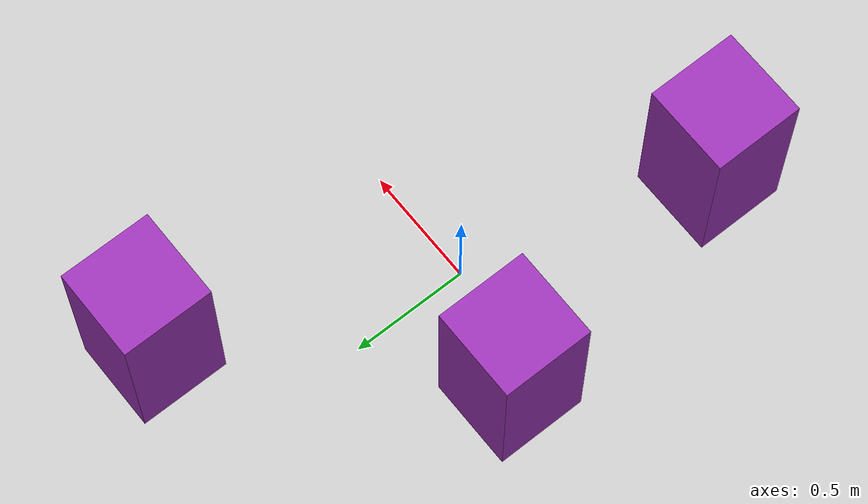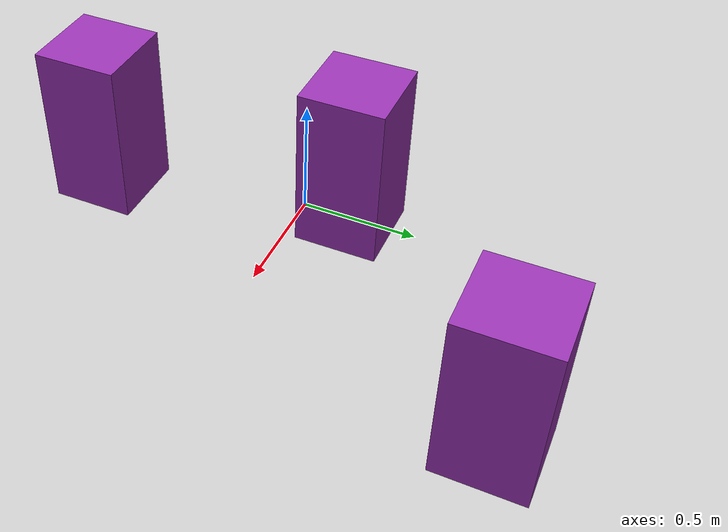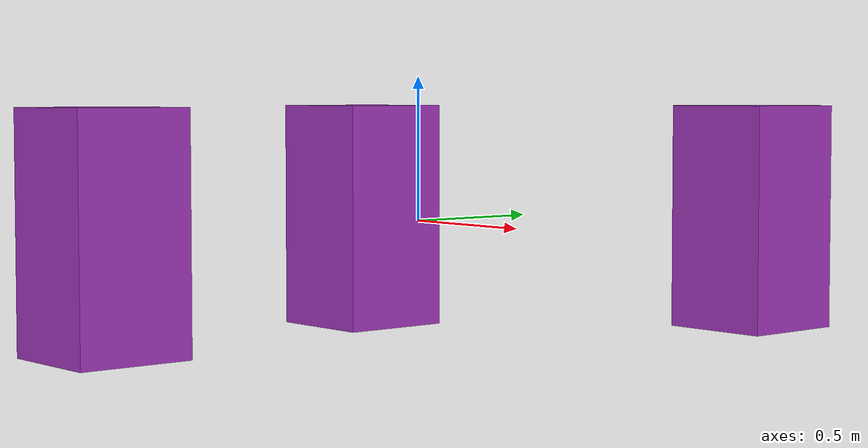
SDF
<?xml version='1.0'?>
<sdf version='1.6'>
  <model name='model'>
    <link name='link_0'>
      <inertial>
        <mass>75</mass>
        <inertia>
          <ixx>12.5</ixx>
          <ixy>0</ixy>
          <ixz>0</ixz>
          <iyy>12.5</iyy>
          <iyz>0</iyz>
          <izz>12.5</izz>
        </inertia>
        <pose frame=''>0 0 0 0 -0 0</pose>
      </inertial>
      <pose frame=''>-0.2 -1.13333 0 0 -0 0</pose>
      <gravity>1</gravity>
      <self_collide>0</self_collide>
      <kinematic>0</kinematic>
      <enable_wind>0</enable_wind>
      <visual name='visual'>
        <pose frame=''>0 0 0 0 -0 0</pose>
        <geometry>
          <box>
            <size>0.4 0.4 0.8</size>
          </box>
        </geometry>
        <material>
          <lighting>1</lighting>
          <script>
            <uri>file://media/materials/scripts/gazebo.material</uri>
            <name>Gazebo/Purple</name>
          </script>
          <shader type='vertex'>
            <normal_map>__default__</normal_map>
          </shader>
          <ambient>1 0 1 1</ambient>
          <diffuse>1 0 1 1</diffuse>
          <specular>0.1 0.1 0.1 1</specular>
          <emissive>0 0 0 1</emissive>
        </material>
        <transparency>0</transparency>
        <cast_shadows>1</cast_shadows>
      </visual>
      <collision name='collision'>
        <laser_retro>0</laser_retro>
        <max_contacts>10</max_contacts>
        <pose frame=''>0 0 0 0 -0 0</pose>
        <geometry>
          <box>
            <size>0.4 0.4 0.8</size>
          </box>
        </geometry>
        <surface>
          <friction>
            <ode>
              <mu>1</mu>
              <mu2>1</mu2>
              <fdir1>0 0 0</fdir1>
              <slip1>0</slip1>
              <slip2>0</slip2>
            </ode>
            <torsional>
              <coefficient>1</coefficient>
              <patch_radius>0</patch_radius>
              <surface_radius>0</surface_radius>
              <use_patch_radius>1</use_patch_radius>
              <ode>
                <slip>0</slip>
              </ode>
            </torsional>
          </friction>
          <bounce>
            <restitution_coefficient>0</restitution_coefficient>
            <threshold>1e+06</threshold>
          </bounce>
          <contact>
            <collide_without_contact>0</collide_without_contact>
            <collide_without_contact_bitmask>1</collide_without_contact_bitmask>
            <collide_bitmask>1</collide_bitmask>
            <ode>
              <soft_cfm>0</soft_cfm>
              <soft_erp>0.2</soft_erp>
              <kp>1e+13</kp>
              <kd>1</kd>
              <max_vel>0.01</max_vel>
              <min_depth>0</min_depth>
            </ode>
            <bullet>
              <split_impulse>1</split_impulse>
              <split_impulse_penetration_threshold>-0.01</split_impulse_penetration_threshold>
              <soft_cfm>0</soft_cfm>
              <soft_erp>0.2</soft_erp>
              <kp>1e+13</kp>
              <kd>1</kd>
            </bullet>
          </contact>
        </surface>
      </collision>
    </link>
    <link name='link_0_clone'>
      <inertial>
        <mass>75</mass>
        <inertia>
          <ixx>12.5</ixx>
          <ixy>0</ixy>
          <ixz>0</ixz>
          <iyy>12.5</iyy>
          <iyz>0</iyz>
          <izz>12.5</izz>
        </inertia>
        <pose frame=''>0 0 0 0 -0 0</pose>
      </inertial>
      <pose frame=''>-0.4 0.066667 0 0 -0 0</pose>
      <gravity>1</gravity>
      <self_collide>0</self_collide>
      <kinematic>0</kinematic>
      <enable_wind>0</enable_wind>
      <visual name='visual'>
        <pose frame=''>0 0 0 0 -0 0</pose>
        <geometry>
          <box>
            <size>0.4 0.4 0.8</size>
          </box>
        </geometry>
        <material>
          <lighting>1</lighting>
          <script>
            <uri>file://media/materials/scripts/gazebo.material</uri>
            <name>Gazebo/Purple</name>
          </script>
          <shader type='vertex'>
            <normal_map>__default__</normal_map>
          </shader>
          <ambient>1 0 1 1</ambient>
          <diffuse>1 0 1 1</diffuse>
          <specular>0.1 0.1 0.1 1</specular>
          <emissive>0 0 0 1</emissive>
        </material>
        <transparency>0</transparency>
        <cast_shadows>1</cast_shadows>
      </visual>
      <collision name='collision'>
        <laser_retro>0</laser_retro>
        <max_contacts>10</max_contacts>
        <pose frame=''>0 0 0 0 -0 0</pose>
        <geometry>
          <box>
            <size>0.4 0.4 0.8</size>
          </box>
        </geometry>
        <surface>
          <friction>
            <ode>
              <mu>1</mu>
              <mu2>1</mu2>
              <fdir1>0 0 0</fdir1>
              <slip1>0</slip1>
              <slip2>0</slip2>
            </ode>
            <torsional>
              <coefficient>1</coefficient>
              <patch_radius>0</patch_radius>
              <surface_radius>0</surface_radius>
              <use_patch_radius>1</use_patch_radius>
              <ode>
                <slip>0</slip>
              </ode>
            </torsional>
          </friction>
          <bounce>
            <restitution_coefficient>0</restitution_coefficient>
            <threshold>1e+06</threshold>
          </bounce>
          <contact>
            <collide_without_contact>0</collide_without_contact>
            <collide_without_contact_bitmask>1</collide_without_contact_bitmask>
            <collide_bitmask>1</collide_bitmask>
            <ode>
              <soft_cfm>0</soft_cfm>
              <soft_erp>0.2</soft_erp>
              <kp>1e+13</kp>
              <kd>1</kd>
              <max_vel>0.01</max_vel>
              <min_depth>0</min_depth>
            </ode>
            <bullet>
              <split_impulse>1</split_impulse>
              <split_impulse_penetration_threshold>-0.01</split_impulse_penetration_threshold>
              <soft_cfm>0</soft_cfm>
              <soft_erp>0.2</soft_erp>
              <kp>1e+13</kp>
              <kd>1</kd>
            </bullet>
          </contact>
        </surface>
      </collision>
    </link>
    <link name='link_0_clone_clone'>
      <inertial>
        <mass>75</mass>
        <inertia>
          <ixx>12.5</ixx>
          <ixy>0</ixy>
          <ixz>0</ixz>
          <iyy>12.5</iyy>
          <iyz>0</iyz>
          <izz>12.5</izz>
        </inertia>
        <pose frame=''>0 0 0 0 -0 0</pose>
      </inertial>
      <pose frame=''>0.6 1.06667 0 0 -0 0</pose>
      <gravity>1</gravity>
      <self_collide>0</self_collide>
      <kinematic>0</kinematic>
      <enable_wind>0</enable_wind>
      <visual name='visual'>
        <pose frame=''>0 0 0 0 -0 0</pose>
        <geometry>
          <box>
            <size>0.4 0.4 0.8</size>
          </box>
        </geometry>
        <material>
          <lighting>1</lighting>
          <script>
            <uri>file://media/materials/scripts/gazebo.material</uri>
            <name>Gazebo/Purple</name>
          </script>
          <shader type='vertex'>
            <normal_map>__default__</normal_map>
          </shader>
          <ambient>1 0 1 1</ambient>
          <diffuse>1 0 1 1</diffuse>
          <specular>0.1 0.1 0.1 1</specular>
          <emissive>0 0 0 1</emissive>
        </material>
        <transparency>0</transparency>
        <cast_shadows>1</cast_shadows>
      </visual>
      <collision name='collision'>
        <laser_retro>0</laser_retro>
        <max_contacts>10</max_contacts>
        <pose frame=''>0 0 0 0 -0 0</pose>
        <geometry>
          <box>
            <size>0.4 0.4 0.8</size>
          </box>
        </geometry>
        <surface>
          <friction>
            <ode>
              <mu>1</mu>
              <mu2>1</mu2>
              <fdir1>0 0 0</fdir1>
              <slip1>0</slip1>
              <slip2>0</slip2>
            </ode>
            <torsional>
              <coefficient>1</coefficient>
              <patch_radius>0</patch_radius>
              <surface_radius>0</surface_radius>
              <use_patch_radius>1</use_patch_radius>
              <ode>
                <slip>0</slip>
              </ode>
            </torsional>
          </friction>
          <bounce>
            <restitution_coefficient>0</restitution_coefficient>
            <threshold>1e+06</threshold>
          </bounce>
          <contact>
            <collide_without_contact>0</collide_without_contact>
            <collide_without_contact_bitmask>1</collide_without_contact_bitmask>
            <collide_bitmask>1</collide_bitmask>
            <ode>
              <soft_cfm>0</soft_cfm>
              <soft_erp>0.2</soft_erp>
              <kp>1e+13</kp>
              <kd>1</kd>
              <max_vel>0.01</max_vel>
              <min_depth>0</min_depth>
            </ode>
            <bullet>
              <split_impulse>1</split_impulse>
              <split_impulse_penetration_threshold>-0.01</split_impulse_penetration_threshold>
              <soft_cfm>0</soft_cfm>
              <soft_erp>0.2</soft_erp>
              <kp>1e+13</kp>
              <kd>1</kd>
            </bullet>
          </contact>
        </surface>
      </collision>
    </link>
    <static>0</static>
    <allow_auto_disable>1</allow_auto_disable>
  </model>
</sdf>
